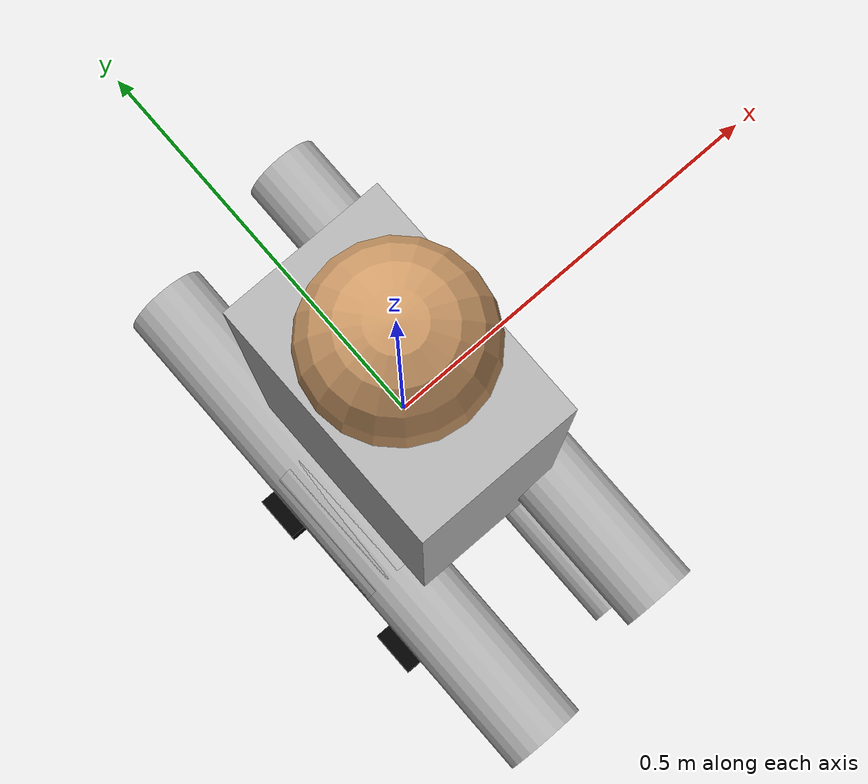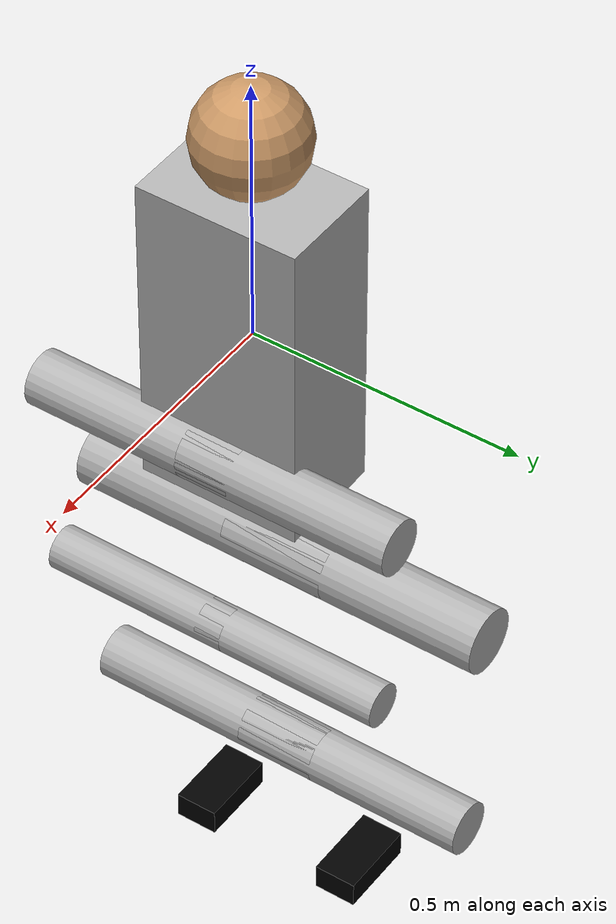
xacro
<?xml version="1.0"?>
<robot name="simple_humanoid" xmlns:xacro="http://www.ros.org/wiki/xacro">
  <!-- Properties -->
  <xacro:property name="M_PI" value="3.1415926535897931"/>
  <xacro:property name="torso_height" value="0.6"/>
  <xacro:property name="torso_width" value="0.3"/>
  <xacro:property name="torso_depth" value="0.2"/>
  <xacro:property name="head_radius" value="0.1"/>
  <xacro:property name="upper_arm_length" value="0.4"/>
  <xacro:property name="lower_arm_length" value="0.35"/>
  <xacro:property name="upper_leg_length" value="0.5"/>
  <xacro:property name="lower_leg_length" value="0.45"/>
  <xacro:property name="foot_length" value="0.15"/>
  <xacro:property name="foot_width" value="0.08"/>
  <xacro:property name="foot_height" value="0.05"/>

  <!-- Torso -->
  <link name="torso">
    <visual>
      <geometry>
        <box size="${torso_depth} ${torso_width} ${torso_height}"/>
      </geometry>
      <material name="light_gray">
        <color rgba="0.7 0.7 0.7 1"/>
      </material>
    </visual>
    <collision>
      <geometry>
        <box size="${torso_depth} ${torso_width} ${torso_height}"/>
      </geometry>
    </collision>
    <inertial>
      <mass value="5.0"/>
      <inertia ixx="0.5" ixy="0" ixz="0" iyy="0.5" iyz="0" izz="0.5"/>
    </inertial>
  </link>

  <!-- Head -->
  <link name="head">
    <visual>
      <geometry>
        <sphere radius="${head_radius}"/>
      </geometry>
      <material name="skin">
        <color rgba="0.8 0.6 0.4 1"/>
      </material>
    </visual>
    <collision>
      <geometry>
        <sphere radius="${head_radius}"/>
      </geometry>
    </collision>
    <inertial>
      <mass value="1.0"/>
      <inertia ixx="0.02" ixy="0" ixz="0" iyy="0.02" iyz="0" izz="0.02"/>
    </inertial>
  </link>

  <!-- Neck joint -->
  <joint name="neck_joint" type="revolute">
    <parent link="torso"/>
    <child link="head"/>
    <origin xyz="0 0 ${torso_height/2 + head_radius}" rpy="0 0 0"/>
    <axis xyz="0 0 1"/>
    <limit lower="${-M_PI/2}" upper="${M_PI/2}" effort="100" velocity="1"/>
  </joint>

  <!-- Left shoulder -->
  <link name="left_upper_arm">
    <visual>
      <geometry>
        <cylinder length="${upper_arm_length}" radius="0.05"/>
      </geometry>
      <origin xyz="0 0 ${-upper_arm_length/2}" rpy="${M_PI/2} 0 0"/>
      <material name="light_gray">
        <color rgba="0.7 0.7 0.7 1"/>
      </material>
    </visual>
    <collision>
      <geometry>
        <cylinder length="${upper_arm_length}" radius="0.05"/>
      </geometry>
      <origin xyz="0 0 ${-upper_arm_length/2}" rpy="${M_PI/2} 0 0"/>
    </collision>
    <inertial>
      <mass value="0.8"/>
      <inertia ixx="0.01" ixy="0" ixz="0" iyy="0.01" iyz="0" izz="0.01"/>
    </inertial>
  </link>

  <joint name="left_shoulder_joint" type="revolute">
    <parent link="torso"/>
    <child link="left_upper_arm"/>
    <origin xyz="${torso_depth/2} ${torso_width/2} 0" rpy="0 0 0"/>
    <axis xyz="0 1 0"/>
    <limit lower="${-M_PI/2}" upper="${M_PI/2}" effort="50" velocity="1"/>
  </joint>

  <!-- Left elbow -->
  <link name="left_lower_arm">
    <visual>
      <geometry>
        <cylinder length="${lower_arm_length}" radius="0.04"/>
      </geometry>
      <origin xyz="0 0 ${-lower_arm_length/2}" rpy="${M_PI/2} 0 0"/>
      <material name="light_gray">
        <color rgba="0.7 0.7 0.7 1"/>
      </material>
    </visual>
    <collision>
      <geometry>
        <cylinder length="${lower_arm_length}" radius="0.04"/>
      </geometry>
      <origin xyz="0 0 ${-lower_arm_length/2}" rpy="${M_PI/2} 0 0"/>
    </collision>
    <inertial>
      <mass value="0.6"/>
      <inertia ixx="0.005" ixy="0" ixz="0" iyy="0.005" iyz="0" izz="0.005"/>
    </inertial>
  </link>

  <joint name="left_elbow_joint" type="revolute">
    <parent link="left_upper_arm"/>
    <child link="left_lower_arm"/>
    <origin xyz="0 0 ${-upper_arm_length}" rpy="0 0 0"/>
    <axis xyz="0 1 0"/>
    <limit lower="0" upper="${M_PI/2}" effort="30" velocity="1"/>
  </joint>

  <!-- Right shoulder -->
  <link name="right_upper_arm">
    <visual>
      <geometry>
        <cylinder length="${upper_arm_length}" radius="0.05"/>
      </geometry>
      <origin xyz="0 0 ${-upper_arm_length/2}" rpy="${M_PI/2} 0 0"/>
      <material name="light_gray">
        <color rgba="0.7 0.7 0.7 1"/>
      </material>
    </visual>
    <collision>
      <geometry>
        <cylinder length="${upper_arm_length}" radius="0.05"/>
      </geometry>
      <origin xyz="0 0 ${-upper_arm_length/2}" rpy="${M_PI/2} 0 0"/>
    </collision>
    <inertial>
      <mass value="0.8"/>
      <inertia ixx="0.01" ixy="0" ixz="0" iyy="0.01" iyz="0" izz="0.01"/>
    </inertial>
  </link>

  <joint name="right_shoulder_joint" type="revolute">
    <parent link="torso"/>
    <child link="right_upper_arm"/>
    <origin xyz="${torso_depth/2} ${-torso_width/2} 0" rpy="0 0 0"/>
    <axis xyz="0 1 0"/>
    <limit lower="${-M_PI/2}" upper="${M_PI/2}" effort="50" velocity="1"/>
  </joint>

  <!-- Right elbow -->
  <link name="right_lower_arm">
    <visual>
      <geometry>
        <cylinder length="${lower_arm_length}" radius="0.04"/>
      </geometry>
      <origin xyz="0 0 ${-lower_arm_length/2}" rpy="${M_PI/2} 0 0"/>
      <material name="light_gray">
        <color rgba="0.7 0.7 0.7 1"/>
      </material>
    </visual>
    <collision>
      <geometry>
        <cylinder length="${lower_arm_length}" radius="0.04"/>
      </geometry>
      <origin xyz="0 0 ${-lower_arm_length/2}" rpy="${M_PI/2} 0 0"/>
    </collision>
    <inertial>
      <mass value="0.6"/>
      <inertia ixx="0.005" ixy="0" ixz="0" iyy="0.005" iyz="0" izz="0.005"/>
    </inertial>
  </link>

  <joint name="right_elbow_joint" type="revolute">
    <parent link="right_upper_arm"/>
    <child link="right_lower_arm"/>
    <origin xyz="0 0 ${-upper_arm_length}" rpy="0 0 0"/>
    <axis xyz="0 1 0"/>
    <limit lower="0" upper="${M_PI/2}" effort="30" velocity="1"/>
  </joint>

  <!-- Left hip -->
  <link name="left_upper_leg">
    <visual>
      <geometry>
        <cylinder length="${upper_leg_length}" radius="0.06"/>
      </geometry>
      <origin xyz="0 0 ${-upper_leg_length/2}" rpy="${M_PI/2} 0 0"/>
      <material name="light_gray">
        <color rgba="0.7 0.7 0.7 1"/>
      </material>
    </visual>
    <collision>
      <geometry>
        <cylinder length="${upper_leg_length}" radius="0.06"/>
      </geometry>
      <origin xyz="0 0 ${-upper_leg_length/2}" rpy="${M_PI/2} 0 0"/>
    </collision>
    <inertial>
      <mass value="1.2"/>
      <inertia ixx="0.02" ixy="0" ixz="0" iyy="0.02" iyz="0" izz="0.02"/>
    </inertial>
  </link>

  <joint name="left_hip_joint" type="revolute">
    <parent link="torso"/>
    <child link="left_upper_leg"/>
    <origin xyz="${-torso_depth/2} ${torso_width/2} ${-torso_height/2}" rpy="0 0 0"/>
    <axis xyz="0 1 0"/>
    <limit lower="${-M_PI/2}" upper="${M_PI/2}" effort="100" velocity="1"/>
  </joint>

  <!-- Left knee -->
  <link name="left_lower_leg">
    <visual>
      <geometry>
        <cylinder length="${lower_leg_length}" radius="0.05"/>
      </geometry>
      <origin xyz="0 0 ${-lower_leg_length/2}" rpy="${M_PI/2} 0 0"/>
      <material name="light_gray">
        <color rgba="0.7 0.7 0.7 1"/>
      </material>
    </visual>
    <collision>
      <geometry>
        <cylinder length="${lower_leg_length}" radius="0.05"/>
      </geometry>
      <origin xyz="0 0 ${-lower_leg_length/2}" rpy="${M_PI/2} 0 0"/>
    </collision>
    <inertial>
      <mass value="1.0"/>
      <inertia ixx="0.015" ixy="0" ixz="0" iyy="0.015" iyz="0" izz="0.015"/>
    </inertial>
  </link>

  <joint name="left_knee_joint" type="revolute">
    <parent link="left_upper_leg"/>
    <child link="left_lower_leg"/>
    <origin xyz="0 0 ${-upper_leg_length}" rpy="0 0 0"/>
    <axis xyz="0 1 0"/>
    <limit lower="0" upper="${M_PI/2}" effort="80" velocity="1"/>
  </joint>

  <!-- Left foot -->
  <link name="left_foot">
    <visual>
      <geometry>
        <box size="${foot_length} ${foot_width} ${foot_height}"/>
      </geometry>
      <material name="black">
        <color rgba="0 0 0 1"/>
      </material>
    </visual>
    <collision>
      <geometry>
        <box size="${foot_length} ${foot_width} ${foot_height}"/>
      </geometry>
    </collision>
    <inertial>
      <mass value="0.5"/>
      <inertia ixx="0.001" ixy="0" ixz="0" iyy="0.001" iyz="0" izz="0.001"/>
    </inertial>
  </link>

  <joint name="left_ankle_joint" type="revolute">
    <parent link="left_lower_leg"/>
    <child link="left_foot"/>
    <origin xyz="0 0 ${-lower_leg_length}" rpy="0 0 0"/>
    <axis xyz="0 0 1"/>
    <limit lower="${-M_PI/6}" upper="${M_PI/6}" effort="20" velocity="1"/>
  </joint>

  <!-- Right hip -->
  <link name="right_upper_leg">
    <visual>
      <geometry>
        <cylinder length="${upper_leg_length}" radius="0.06"/>
      </geometry>
      <origin xyz="0 0 ${-upper_leg_length/2}" rpy="${M_PI/2} 0 0"/>
      <material name="light_gray">
        <color rgba="0.7 0.7 0.7 1"/>
      </material>
    </visual>
    <collision>
      <geometry>
        <cylinder length="${upper_leg_length}" radius="0.06"/>
      </geometry>
      <origin xyz="0 0 ${-upper_leg_length/2}" rpy="${M_PI/2} 0 0"/>
    </collision>
    <inertial>
      <mass value="1.2"/>
      <inertia ixx="0.02" ixy="0" ixz="0" iyy="0.02" iyz="0" izz="0.02"/>
    </inertial>
  </link>

  <joint name="right_hip_joint" type="revolute">
    <parent link="torso"/>
    <child link="right_upper_leg"/>
    <origin xyz="${-torso_depth/2} ${-torso_width/2} ${-torso_height/2}" rpy="0 0 0"/>
    <axis xyz="0 1 0"/>
    <limit lower="${-M_PI/2}" upper="${M_PI/2}" effort="100" velocity="1"/>
  </joint>

  <!-- Right knee -->
  <link name="right_lower_leg">
    <visual>
      <geometry>
        <cylinder length="${lower_leg_length}" radius="0.05"/>
      </geometry>
      <origin xyz="0 0 ${-lower_leg_length/2}" rpy="${M_PI/2} 0 0"/>
      <material name="light_gray">
        <color rgba="0.7 0.7 0.7 1"/>
      </material>
    </visual>
    <collision>
      <geometry>
        <cylinder length="${lower_leg_length}" radius="0.05"/>
      </geometry>
      <origin xyz="0 0 ${-lower_leg_length/2}" rpy="${M_PI/2} 0 0"/>
    </collision>
    <inertial>
      <mass value="1.0"/>
      <inertia ixx="0.015" ixy="0" ixz="0" iyy="0.015" iyz="0" izz="0.015"/>
    </inertial>
  </link>

  <joint name="right_knee_joint" type="revolute">
    <parent link="right_upper_leg"/>
    <child link="right_lower_leg"/>
    <origin xyz="0 0 ${-upper_leg_length}" rpy="0 0 0"/>
    <axis xyz="0 1 0"/>
    <limit lower="0" upper="${M_PI/2}" effort="80" velocity="1"/>
  </joint>

  <!-- Right foot -->
  <link name="right_foot">
    <visual>
      <geometry>
        <box size="${foot_length} ${foot_width} ${foot_height}"/>
      </geometry>
      <material name="black">
        <color rgba="0 0 0 1"/>
      </material>
    </visual>
    <collision>
      <geometry>
        <box size="${foot_length} ${foot_width} ${foot_height}"/>
      </geometry>
    </collision>
    <inertial>
      <mass value="0.5"/>
      <inertia ixx="0.001" ixy="0" ixz="0" iyy="0.001" iyz="0" izz="0.001"/>
    </inertial>
  </link>

  <joint name="right_ankle_joint" type="revolute">
    <parent link="right_lower_leg"/>
    <child link="right_foot"/>
    <origin xyz="0 0 ${-lower_leg_length}" rpy="0 0 0"/>
    <axis xyz="0 0 1"/>
    <limit lower="${-M_PI/6}" upper="${M_PI/6}" effort="20" velocity="1"/>
  </joint>

  <!-- Gazebo materials -->
  <gazebo reference="torso">
    <material>Gazebo/Grey</material>
  </gazebo>

  <gazebo reference="head">
    <material>Gazebo/Pink</material>
  </gazebo>

  <gazebo reference="left_upper_arm">
    <material>Gazebo/Grey</material>
  </gazebo>

  <gazebo reference="left_lower_arm">
    <material>Gazebo/Grey</material>
  </gazebo>

  <gazebo reference="right_upper_arm">
    <material>Gazebo/Grey</material>
  </gazebo>

  <gazebo reference="right_lower_arm">
    <material>Gazebo/Grey</material>
  </gazebo>

  <gazebo reference="left_upper_leg">
    <material>Gazebo/Grey</material>
  </gazebo>

  <gazebo reference="left_lower_leg">
    <material>Gazebo/Grey</material>
  </gazebo>

  <gazebo reference="left_foot">
    <material>Gazebo/Black</material>
  </gazebo>

  <gazebo reference="right_upper_leg">
    <material>Gazebo/Grey</material>
  </gazebo>

  <gazebo reference="right_lower_leg">
    <material>Gazebo/Grey</material>
  </gazebo>

  <gazebo reference="right_foot">
    <material>Gazebo/Black</material>
  </gazebo>

  <!-- Gazebo plugin for joint state publisher -->
  <gazebo>
    <plugin name="joint_state_publisher" filename="libgazebo_ros_joint_state_publisher.so">
      <ros>
        <namespace>/simple_humanoid</namespace>
      </ros>
      <update_rate>30</update_rate>
      <joint_name>neck_joint</joint_name>
      <joint_name>left_shoulder_joint</joint_name>
      <joint_name>left_elbow_joint</joint_name>
      <joint_name>right_shoulder_joint</joint_name>
      <joint_name>right_elbow_joint</joint_name>
      <joint_name>left_hip_joint</joint_name>
      <joint_name>left_knee_joint</joint_name>
      <joint_name>left_ankle_joint</joint_name>
      <joint_name>right_hip_joint</joint_name>
      <joint_name>right_knee_joint</joint_name>
      <joint_name>right_ankle_joint</joint_name>
    </plugin>
  </gazebo>
</robot>
